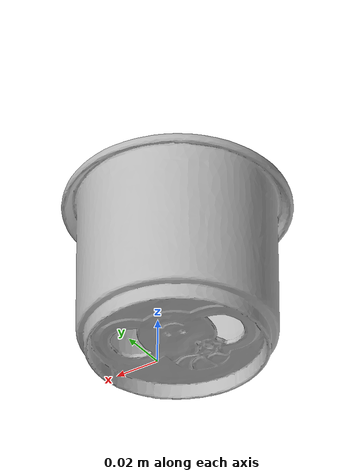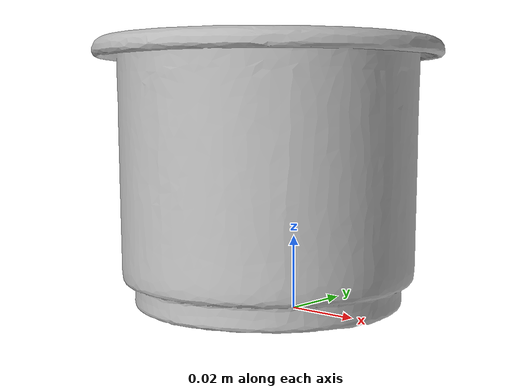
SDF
<?xml version='1.0'?>
<sdf version="1.4">
  <model name="i_cups">
    <static>false</static>
    <link name="link">
      <inertial>
        <pose>-0.010981968779668252 0.0023034321827084397 0.03669757456242688 3.002708732369125 -1.5636313733304965 1.3242445417895623</pose>
        <mass>4.956830993945483e-05</mass>
        <inertia>
          <ixx>7.783022606444997e-08</ixx>
          <ixy>1.8315936465672732e-25</ixy>
          <ixz>6.666976079197461e-25</ixz>
          <iyy>6.918640873969703e-08</iyy>
          <iyz>2.201074301763858e-24</iyz>
          <izz>6.889165195862579e-08</izz>
        </inertia>
      </inertial>
      <collision name="collision">
        <geometry>
          <mesh>
            <!-- Use a downsampled mesh for collisions -->
            <uri>model://065-i_cups/google_16k/065-i_cups.obj</uri>
            </mesh>
        </geometry>
        <surface>
          <friction>
            <ode>
              <mu>0.9</mu>
              <mu2>0.9</mu2>
            </ode>
          </friction>
          <contact>
            <ode>
              <kp>1000000000000.0</kp>
              <kd>1</kd>
              <min_depth>0.0001</min_depth>
              <max_vel>0.01</max_vel>
            </ode>
          </contact>
          <bounce>
            <restitution_coefficient>0.1</restitution_coefficient>
            <threshold>1000.0</threshold>
          </bounce>
        </surface>
      </collision>
      <visual name="visual">
        <geometry>
          <mesh>
            <uri>model://065-i_cups/google_16k/065-i_cups.dae</uri>
            </mesh>
        </geometry>
      </visual>
    </link>
  </model>
</sdf>
